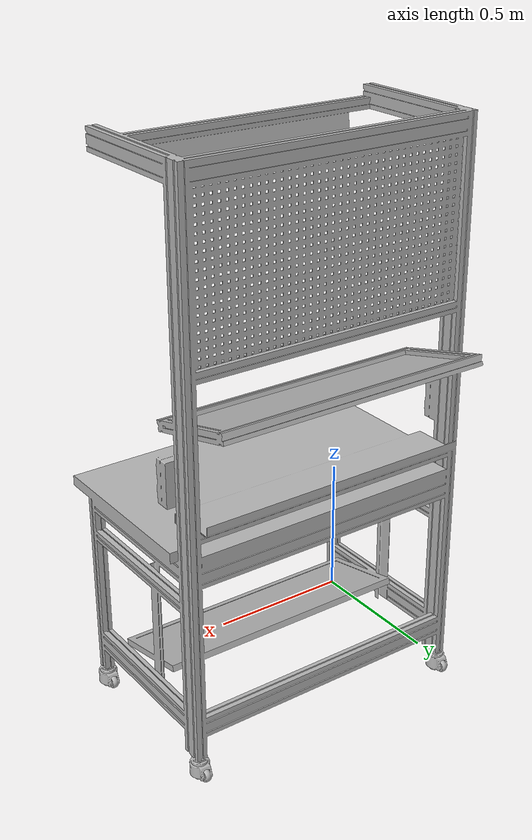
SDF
<?xml version="1.0" ?>
<sdf version="1.5">
  <model name="test_table">
    <static>true</static>
    <link name="link">
      <pose>0 0 0 0 0 0</pose>
      <collision name="collision">
        <geometry>
          <mesh>
            <uri>model://test_table/meshes/test_table.dae</uri>
            <scale>0.55 0.55 0.55</scale>
          </mesh>
        </geometry>
      </collision>
      <visual name="visual">
        <geometry>
          <mesh>
            <uri>model://test_table/meshes/test_table.dae</uri>
            <scale>0.55 0.55 0.55</scale>
          </mesh>
        </geometry>
      </visual>
    </link>
  </model>
</sdf>
